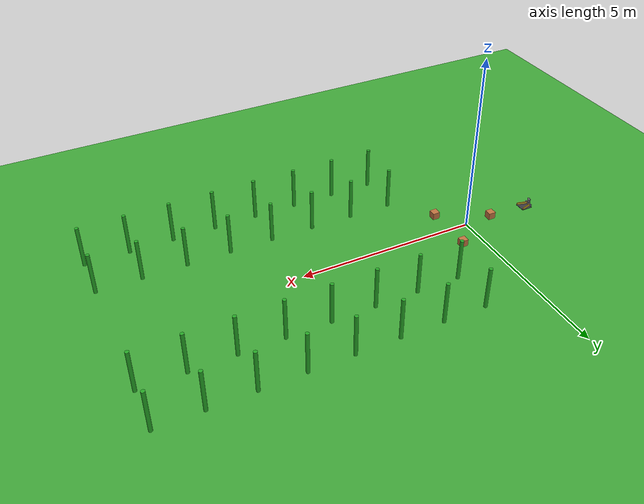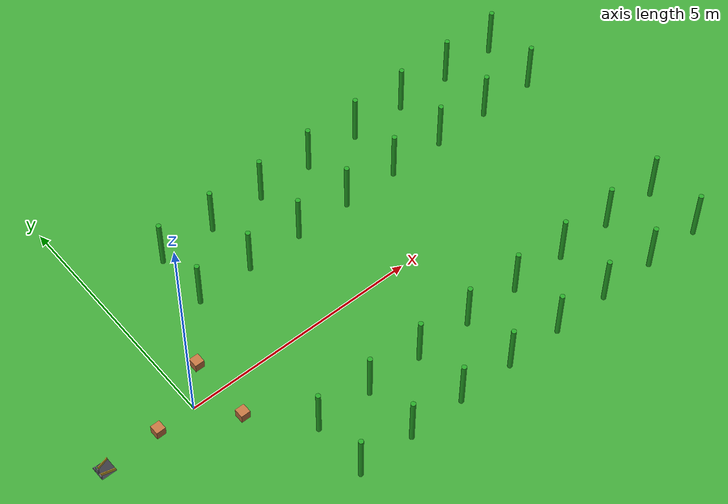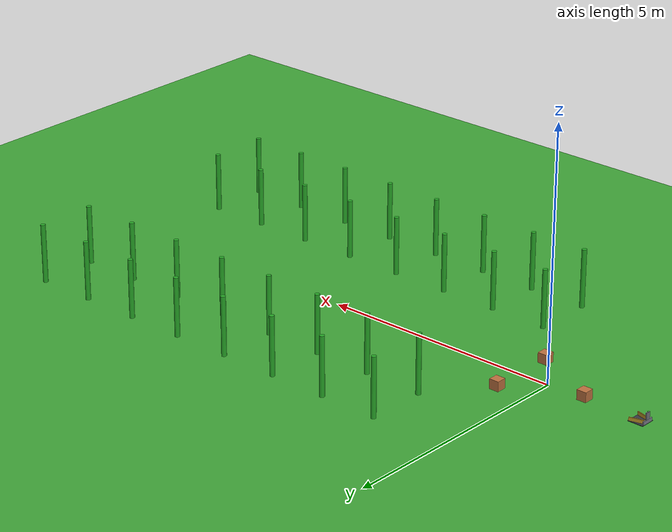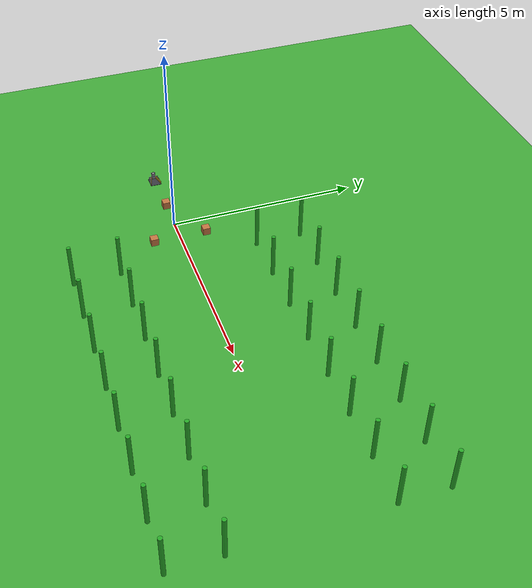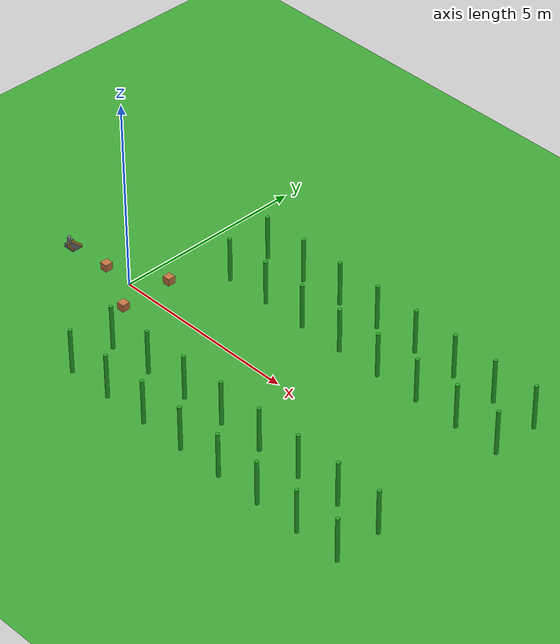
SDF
<?xml version="1.0" ?>
<sdf version="1.8">
  <world name="rover_world">

    <physics name="dart" type="dart" default="true">
      <max_step_size>0.002</max_step_size>
      <real_time_factor>1.0</real_time_factor>
    </physics>

    <plugin filename="ignition-gazebo-physics-system"        name="ignition::gazebo::systems::Physics"/>
    <plugin filename="ignition-gazebo-user-commands-system"  name="ignition::gazebo::systems::UserCommands"/>
    <plugin filename="ignition-gazebo-scene-broadcaster-system" name="ignition::gazebo::systems::SceneBroadcaster"/>
    <!-- Sensors plugin lives at WORLD level (not model level) so 3–10 rovers
         share one rendering pipeline instead of instantiating N competing ones. -->
    <plugin filename="ignition-gazebo-sensors-system" name="ignition::gazebo::systems::Sensors">
      <render_engine>ogre</render_engine>
    </plugin>

    <light name="sun" type="directional">
      <pose>0 0 10 0 0 0</pose>
      <cast_shadows>true</cast_shadows>
      <diffuse>1 1 1 1</diffuse>
      <specular>0.3 0.3 0.3 1</specular>
      <direction>-0.3 -0.4 -0.9</direction>
    </light>

    <scene>
      <ambient>0.5 0.5 0.5 1</ambient>
      <background>0.6 0.75 0.9 1</background>
      <grid>false</grid>
    </scene>

    <!-- GRASS GROUND -->
    <model name="ground">
      <static>true</static>
      <link name="ground_link">
        <collision name="ground_collision">
          <geometry><plane><normal>0 0 1</normal><size>30 30</size></plane></geometry>
          <surface><friction><ode><mu>1.0</mu><mu2>1.0</mu2></ode></friction></surface>
        </collision>
        <visual name="ground_visual">
          <geometry><plane><normal>0 0 1</normal><size>30 30</size></plane></geometry>
          <material>
            <ambient>0.20 0.55 0.18 1</ambient>
            <diffuse>0.25 0.65 0.22 1</diffuse>
            <specular>0.05 0.1 0.05 1</specular>
          </material>
        </visual>
      </link>
    </model>

    <!-- Small boxes near spawn so the 2 m sonars register something -->
    <model name="box_near_left">
      <static>true</static>
      <pose>0.6 0.7 0.1 0 0 0</pose>
      <link name="l">
        <collision name="c"><geometry><box><size>0.2 0.2 0.2</size></box></geometry></collision>
        <visual name="v">
          <geometry><box><size>0.2 0.2 0.2</size></box></geometry>
          <material><ambient>0.7 0.4 0.2 1</ambient><diffuse>0.75 0.45 0.25 1</diffuse></material>
        </visual>
      </link>
    </model>
    <model name="box_near_right">
      <static>true</static>
      <pose>0.6 -0.7 0.1 0 0 0</pose>
      <link name="l">
        <collision name="c"><geometry><box><size>0.2 0.2 0.2</size></box></geometry></collision>
        <visual name="v">
          <geometry><box><size>0.2 0.2 0.2</size></box></geometry>
          <material><ambient>0.7 0.4 0.2 1</ambient><diffuse>0.75 0.45 0.25 1</diffuse></material>
        </visual>
      </link>
    </model>
    <model name="box_behind">
      <static>true</static>
      <pose>-0.8 0.0 0.1 0 0 0</pose>
      <link name="l">
        <collision name="c"><geometry><box><size>0.2 0.2 0.2</size></box></geometry></collision>
        <visual name="v">
          <geometry><box><size>0.2 0.2 0.2</size></box></geometry>
          <material><ambient>0.7 0.4 0.2 1</ambient><diffuse>0.75 0.45 0.25 1</diffuse></material>
        </visual>
      </link>
    </model>

    <!-- Row Y=-3.0 -->
    <model name="crop_r1_p1"><static>true</static><pose>1.5 -3.0 0.6 0 0 0</pose><link name="l"><collision name="c"><geometry><cylinder><radius>0.05</radius><length>1.2</length></cylinder></geometry></collision><visual name="v"><geometry><cylinder><radius>0.05</radius><length>1.2</length></cylinder></geometry><material><ambient>0.1 0.55 0.1 1</ambient><diffuse>0.15 0.65 0.15 1</diffuse></material></visual></link></model>
    <model name="crop_r1_p2"><static>true</static><pose>2.7 -3.0 0.6 0 0 0</pose><link name="l"><collision name="c"><geometry><cylinder><radius>0.05</radius><length>1.2</length></cylinder></geometry></collision><visual name="v"><geometry><cylinder><radius>0.05</radius><length>1.2</length></cylinder></geometry><material><ambient>0.1 0.55 0.1 1</ambient><diffuse>0.15 0.65 0.15 1</diffuse></material></visual></link></model>
    <model name="crop_r1_p3"><static>true</static><pose>3.9 -3.0 0.6 0 0 0</pose><link name="l"><collision name="c"><geometry><cylinder><radius>0.05</radius><length>1.2</length></cylinder></geometry></collision><visual name="v"><geometry><cylinder><radius>0.05</radius><length>1.2</length></cylinder></geometry><material><ambient>0.1 0.55 0.1 1</ambient><diffuse>0.15 0.65 0.15 1</diffuse></material></visual></link></model>
    <model name="crop_r1_p4"><static>true</static><pose>5.1 -3.0 0.6 0 0 0</pose><link name="l"><collision name="c"><geometry><cylinder><radius>0.05</radius><length>1.2</length></cylinder></geometry></collision><visual name="v"><geometry><cylinder><radius>0.05</radius><length>1.2</length></cylinder></geometry><material><ambient>0.1 0.55 0.1 1</ambient><diffuse>0.15 0.65 0.15 1</diffuse></material></visual></link></model>
    <model name="crop_r1_p5"><static>true</static><pose>6.3 -3.0 0.6 0 0 0</pose><link name="l"><collision name="c"><geometry><cylinder><radius>0.05</radius><length>1.2</length></cylinder></geometry></collision><visual name="v"><geometry><cylinder><radius>0.05</radius><length>1.2</length></cylinder></geometry><material><ambient>0.1 0.55 0.1 1</ambient><diffuse>0.15 0.65 0.15 1</diffuse></material></visual></link></model>
    <model name="crop_r1_p6"><static>true</static><pose>7.5 -3.0 0.6 0 0 0</pose><link name="l"><collision name="c"><geometry><cylinder><radius>0.05</radius><length>1.2</length></cylinder></geometry></collision><visual name="v"><geometry><cylinder><radius>0.05</radius><length>1.2</length></cylinder></geometry><material><ambient>0.1 0.55 0.1 1</ambient><diffuse>0.15 0.65 0.15 1</diffuse></material></visual></link></model>
    <model name="crop_r1_p7"><static>true</static><pose>8.7 -3.0 0.6 0 0 0</pose><link name="l"><collision name="c"><geometry><cylinder><radius>0.05</radius><length>1.2</length></cylinder></geometry></collision><visual name="v"><geometry><cylinder><radius>0.05</radius><length>1.2</length></cylinder></geometry><material><ambient>0.1 0.55 0.1 1</ambient><diffuse>0.15 0.65 0.15 1</diffuse></material></visual></link></model>
    <model name="crop_r1_p8"><static>true</static><pose>9.9 -3.0 0.6 0 0 0</pose><link name="l"><collision name="c"><geometry><cylinder><radius>0.05</radius><length>1.2</length></cylinder></geometry></collision><visual name="v"><geometry><cylinder><radius>0.05</radius><length>1.2</length></cylinder></geometry><material><ambient>0.1 0.55 0.1 1</ambient><diffuse>0.15 0.65 0.15 1</diffuse></material></visual></link></model>

    <!-- Row Y=-1.8 -->
    <model name="crop_r2_p1"><static>true</static><pose>1.5 -1.8 0.6 0 0 0</pose><link name="l"><collision name="c"><geometry><cylinder><radius>0.05</radius><length>1.2</length></cylinder></geometry></collision><visual name="v"><geometry><cylinder><radius>0.05</radius><length>1.2</length></cylinder></geometry><material><ambient>0.1 0.55 0.1 1</ambient><diffuse>0.15 0.65 0.15 1</diffuse></material></visual></link></model>
    <model name="crop_r2_p2"><static>true</static><pose>2.7 -1.8 0.6 0 0 0</pose><link name="l"><collision name="c"><geometry><cylinder><radius>0.05</radius><length>1.2</length></cylinder></geometry></collision><visual name="v"><geometry><cylinder><radius>0.05</radius><length>1.2</length></cylinder></geometry><material><ambient>0.1 0.55 0.1 1</ambient><diffuse>0.15 0.65 0.15 1</diffuse></material></visual></link></model>
    <model name="crop_r2_p3"><static>true</static><pose>3.9 -1.8 0.6 0 0 0</pose><link name="l"><collision name="c"><geometry><cylinder><radius>0.05</radius><length>1.2</length></cylinder></geometry></collision><visual name="v"><geometry><cylinder><radius>0.05</radius><length>1.2</length></cylinder></geometry><material><ambient>0.1 0.55 0.1 1</ambient><diffuse>0.15 0.65 0.15 1</diffuse></material></visual></link></model>
    <model name="crop_r2_p4"><static>true</static><pose>5.1 -1.8 0.6 0 0 0</pose><link name="l"><collision name="c"><geometry><cylinder><radius>0.05</radius><length>1.2</length></cylinder></geometry></collision><visual name="v"><geometry><cylinder><radius>0.05</radius><length>1.2</length></cylinder></geometry><material><ambient>0.1 0.55 0.1 1</ambient><diffuse>0.15 0.65 0.15 1</diffuse></material></visual></link></model>
    <model name="crop_r2_p5"><static>true</static><pose>6.3 -1.8 0.6 0 0 0</pose><link name="l"><collision name="c"><geometry><cylinder><radius>0.05</radius><length>1.2</length></cylinder></geometry></collision><visual name="v"><geometry><cylinder><radius>0.05</radius><length>1.2</length></cylinder></geometry><material><ambient>0.1 0.55 0.1 1</ambient><diffuse>0.15 0.65 0.15 1</diffuse></material></visual></link></model>
    <model name="crop_r2_p6"><static>true</static><pose>7.5 -1.8 0.6 0 0 0</pose><link name="l"><collision name="c"><geometry><cylinder><radius>0.05</radius><length>1.2</length></cylinder></geometry></collision><visual name="v"><geometry><cylinder><radius>0.05</radius><length>1.2</length></cylinder></geometry><material><ambient>0.1 0.55 0.1 1</ambient><diffuse>0.15 0.65 0.15 1</diffuse></material></visual></link></model>
    <model name="crop_r2_p7"><static>true</static><pose>8.7 -1.8 0.6 0 0 0</pose><link name="l"><collision name="c"><geometry><cylinder><radius>0.05</radius><length>1.2</length></cylinder></geometry></collision><visual name="v"><geometry><cylinder><radius>0.05</radius><length>1.2</length></cylinder></geometry><material><ambient>0.1 0.55 0.1 1</ambient><diffuse>0.15 0.65 0.15 1</diffuse></material></visual></link></model>
    <model name="crop_r2_p8"><static>true</static><pose>9.9 -1.8 0.6 0 0 0</pose><link name="l"><collision name="c"><geometry><cylinder><radius>0.05</radius><length>1.2</length></cylinder></geometry></collision><visual name="v"><geometry><cylinder><radius>0.05</radius><length>1.2</length></cylinder></geometry><material><ambient>0.1 0.55 0.1 1</ambient><diffuse>0.15 0.65 0.15 1</diffuse></material></visual></link></model>

    <!-- Row Y=1.8 -->
    <model name="crop_r3_p1"><static>true</static><pose>1.5 1.8 0.6 0 0 0</pose><link name="l"><collision name="c"><geometry><cylinder><radius>0.05</radius><length>1.2</length></cylinder></geometry></collision><visual name="v"><geometry><cylinder><radius>0.05</radius><length>1.2</length></cylinder></geometry><material><ambient>0.1 0.55 0.1 1</ambient><diffuse>0.15 0.65 0.15 1</diffuse></material></visual></link></model>
    <model name="crop_r3_p2"><static>true</static><pose>2.7 1.8 0.6 0 0 0</pose><link name="l"><collision name="c"><geometry><cylinder><radius>0.05</radius><length>1.2</length></cylinder></geometry></collision><visual name="v"><geometry><cylinder><radius>0.05</radius><length>1.2</length></cylinder></geometry><material><ambient>0.1 0.55 0.1 1</ambient><diffuse>0.15 0.65 0.15 1</diffuse></material></visual></link></model>
    <model name="crop_r3_p3"><static>true</static><pose>3.9 1.8 0.6 0 0 0</pose><link name="l"><collision name="c"><geometry><cylinder><radius>0.05</radius><length>1.2</length></cylinder></geometry></collision><visual name="v"><geometry><cylinder><radius>0.05</radius><length>1.2</length></cylinder></geometry><material><ambient>0.1 0.55 0.1 1</ambient><diffuse>0.15 0.65 0.15 1</diffuse></material></visual></link></model>
    <model name="crop_r3_p4"><static>true</static><pose>5.1 1.8 0.6 0 0 0</pose><link name="l"><collision name="c"><geometry><cylinder><radius>0.05</radius><length>1.2</length></cylinder></geometry></collision><visual name="v"><geometry><cylinder><radius>0.05</radius><length>1.2</length></cylinder></geometry><material><ambient>0.1 0.55 0.1 1</ambient><diffuse>0.15 0.65 0.15 1</diffuse></material></visual></link></model>
    <model name="crop_r3_p5"><static>true</static><pose>6.3 1.8 0.6 0 0 0</pose><link name="l"><collision name="c"><geometry><cylinder><radius>0.05</radius><length>1.2</length></cylinder></geometry></collision><visual name="v"><geometry><cylinder><radius>0.05</radius><length>1.2</length></cylinder></geometry><material><ambient>0.1 0.55 0.1 1</ambient><diffuse>0.15 0.65 0.15 1</diffuse></material></visual></link></model>
    <model name="crop_r3_p6"><static>true</static><pose>7.5 1.8 0.6 0 0 0</pose><link name="l"><collision name="c"><geometry><cylinder><radius>0.05</radius><length>1.2</length></cylinder></geometry></collision><visual name="v"><geometry><cylinder><radius>0.05</radius><length>1.2</length></cylinder></geometry><material><ambient>0.1 0.55 0.1 1</ambient><diffuse>0.15 0.65 0.15 1</diffuse></material></visual></link></model>
    <model name="crop_r3_p7"><static>true</static><pose>8.7 1.8 0.6 0 0 0</pose><link name="l"><collision name="c"><geometry><cylinder><radius>0.05</radius><length>1.2</length></cylinder></geometry></collision><visual name="v"><geometry><cylinder><radius>0.05</radius><length>1.2</length></cylinder></geometry><material><ambient>0.1 0.55 0.1 1</ambient><diffuse>0.15 0.65 0.15 1</diffuse></material></visual></link></model>
    <model name="crop_r3_p8"><static>true</static><pose>9.9 1.8 0.6 0 0 0</pose><link name="l"><collision name="c"><geometry><cylinder><radius>0.05</radius><length>1.2</length></cylinder></geometry></collision><visual name="v"><geometry><cylinder><radius>0.05</radius><length>1.2</length></cylinder></geometry><material><ambient>0.1 0.55 0.1 1</ambient><diffuse>0.15 0.65 0.15 1</diffuse></material></visual></link></model>

    <!-- Row Y=3.0 -->
    <model name="crop_r4_p1"><static>true</static><pose>1.5 3.0 0.6 0 0 0</pose><link name="l"><collision name="c"><geometry><cylinder><radius>0.05</radius><length>1.2</length></cylinder></geometry></collision><visual name="v"><geometry><cylinder><radius>0.05</radius><length>1.2</length></cylinder></geometry><material><ambient>0.1 0.55 0.1 1</ambient><diffuse>0.15 0.65 0.15 1</diffuse></material></visual></link></model>
    <model name="crop_r4_p2"><static>true</static><pose>2.7 3.0 0.6 0 0 0</pose><link name="l"><collision name="c"><geometry><cylinder><radius>0.05</radius><length>1.2</length></cylinder></geometry></collision><visual name="v"><geometry><cylinder><radius>0.05</radius><length>1.2</length></cylinder></geometry><material><ambient>0.1 0.55 0.1 1</ambient><diffuse>0.15 0.65 0.15 1</diffuse></material></visual></link></model>
    <model name="crop_r4_p3"><static>true</static><pose>3.9 3.0 0.6 0 0 0</pose><link name="l"><collision name="c"><geometry><cylinder><radius>0.05</radius><length>1.2</length></cylinder></geometry></collision><visual name="v"><geometry><cylinder><radius>0.05</radius><length>1.2</length></cylinder></geometry><material><ambient>0.1 0.55 0.1 1</ambient><diffuse>0.15 0.65 0.15 1</diffuse></material></visual></link></model>
    <model name="crop_r4_p4"><static>true</static><pose>5.1 3.0 0.6 0 0 0</pose><link name="l"><collision name="c"><geometry><cylinder><radius>0.05</radius><length>1.2</length></cylinder></geometry></collision><visual name="v"><geometry><cylinder><radius>0.05</radius><length>1.2</length></cylinder></geometry><material><ambient>0.1 0.55 0.1 1</ambient><diffuse>0.15 0.65 0.15 1</diffuse></material></visual></link></model>
    <model name="crop_r4_p5"><static>true</static><pose>6.3 3.0 0.6 0 0 0</pose><link name="l"><collision name="c"><geometry><cylinder><radius>0.05</radius><length>1.2</length></cylinder></geometry></collision><visual name="v"><geometry><cylinder><radius>0.05</radius><length>1.2</length></cylinder></geometry><material><ambient>0.1 0.55 0.1 1</ambient><diffuse>0.15 0.65 0.15 1</diffuse></material></visual></link></model>
    <model name="crop_r4_p6"><static>true</static><pose>7.5 3.0 0.6 0 0 0</pose><link name="l"><collision name="c"><geometry><cylinder><radius>0.05</radius><length>1.2</length></cylinder></geometry></collision><visual name="v"><geometry><cylinder><radius>0.05</radius><length>1.2</length></cylinder></geometry><material><ambient>0.1 0.55 0.1 1</ambient><diffuse>0.15 0.65 0.15 1</diffuse></material></visual></link></model>
    <model name="crop_r4_p7"><static>true</static><pose>8.7 3.0 0.6 0 0 0</pose><link name="l"><collision name="c"><geometry><cylinder><radius>0.05</radius><length>1.2</length></cylinder></geometry></collision><visual name="v"><geometry><cylinder><radius>0.05</radius><length>1.2</length></cylinder></geometry><material><ambient>0.1 0.55 0.1 1</ambient><diffuse>0.15 0.65 0.15 1</diffuse></material></visual></link></model>
    <model name="crop_r4_p8"><static>true</static><pose>9.9 3.0 0.6 0 0 0</pose><link name="l"><collision name="c"><geometry><cylinder><radius>0.05</radius><length>1.2</length></cylinder></geometry></collision><visual name="v"><geometry><cylinder><radius>0.05</radius><length>1.2</length></cylinder></geometry><material><ambient>0.1 0.55 0.1 1</ambient><diffuse>0.15 0.65 0.15 1</diffuse></material></visual></link></model>

    <model name="charging_station_0">
      <static>true</static>
      <pose>-2.0 0 0 0 0 0</pose>
      <link name="base">
        <!-- Ground pad (dark gray slab so the station reads as a docking bay) -->
        <visual name="pad_v"><pose>0 0 0.005 0 0 0</pose><geometry><box><size>0.32 0.30 0.01</size></box></geometry><material><ambient>0.15 0.15 0.17 1</ambient><diffuse>0.22 0.22 0.25 1</diffuse></material></visual>
        <collision name="pad_c"><pose>0 0 0.005 0 0 0</pose><geometry><box><size>0.32 0.30 0.01</size></box></geometry></collision>

        <!-- Back plate: 25 cm wide, 8 cm tall, 2 cm thick, at back (x=-0.15) -->
        <visual name="back_v"><pose>-0.15 0 0.04 0 0 0</pose><geometry><box><size>0.02 0.25 0.08</size></box></geometry><material><ambient>0.35 0.35 0.38 1</ambient><diffuse>0.5 0.5 0.55 1</diffuse></material></visual>
        <collision name="back_c"><pose>-0.15 0 0.04 0 0 0</pose><geometry><box><size>0.02 0.25 0.08</size></box></geometry></collision>

        <!-- Left funnel wall: opens from throat (y=+0.06 at x=-0.15) to mouth (y=+0.14 at x=+0.15).
             Midpoint (0, 0.10, 0.04), length 0.31 m, yaw = atan2(0.08, 0.30) ≈ 0.2606 rad ≈ 14.9°. -->
        <visual name="wall_L_v"><pose>0 0.10 0.04 0 0 0.2606</pose><geometry><box><size>0.31 0.015 0.08</size></box></geometry><material><ambient>0.55 0.45 0.10 1</ambient><diffuse>0.75 0.60 0.15 1</diffuse></material></visual>
        <collision name="wall_L_c"><pose>0 0.10 0.04 0 0 0.2606</pose><geometry><box><size>0.31 0.015 0.08</size></box></geometry></collision>

        <!-- Right funnel wall: mirror of the left. -->
        <visual name="wall_R_v"><pose>0 -0.10 0.04 0 0 -0.2606</pose><geometry><box><size>0.31 0.015 0.08</size></box></geometry><material><ambient>0.55 0.45 0.10 1</ambient><diffuse>0.75 0.60 0.15 1</diffuse></material></visual>
        <collision name="wall_R_c"><pose>0 -0.10 0.04 0 0 -0.2606</pose><geometry><box><size>0.31 0.015 0.08</size></box></geometry></collision>

        <!-- Two pogo-pin contacts on back plate at wheel-clearance height (0.03 m). Cylinders oriented along X.
             Copper color so they read as electrical contacts. -->
        <visual name="pin_L_v"><pose>-0.135 0.03 0.03 0 1.5708 0</pose><geometry><cylinder><radius>0.008</radius><length>0.02</length></cylinder></geometry><material><ambient>0.55 0.30 0.10 1</ambient><diffuse>0.80 0.45 0.15 1</diffuse></material></visual>
        <collision name="pin_L_c"><pose>-0.135 0.03 0.03 0 1.5708 0</pose><geometry><cylinder><radius>0.008</radius><length>0.02</length></cylinder></geometry></collision>
        <visual name="pin_R_v"><pose>-0.135 -0.03 0.03 0 1.5708 0</pose><geometry><cylinder><radius>0.008</radius><length>0.02</length></cylinder></geometry><material><ambient>0.55 0.30 0.10 1</ambient><diffuse>0.80 0.45 0.15 1</diffuse></material></visual>
        <collision name="pin_R_c"><pose>-0.135 -0.03 0.03 0 1.5708 0</pose><geometry><cylinder><radius>0.008</radius><length>0.02</length></cylinder></geometry></collision>

        <!-- AprilTag mast: rises 15 cm above back plate; front-facing plate for the tag texture.
             White plate now — swap material for a real AprilTag PNG when the visual servo node comes online. -->
        <visual name="mast_v"><pose>-0.15 0 0.15 0 0 0</pose><geometry><box><size>0.02 0.10 0.14</size></box></geometry><material><ambient>0.30 0.30 0.32 1</ambient><diffuse>0.45 0.45 0.48 1</diffuse></material></visual>
        <collision name="mast_c"><pose>-0.15 0 0.15 0 0 0</pose><geometry><box><size>0.02 0.10 0.14</size></box></geometry></collision>
        <visual name="tag_v"><pose>-0.139 0 0.20 0 0 0</pose><geometry><box><size>0.002 0.06 0.06</size></box></geometry><material><ambient>0.95 0.95 0.95 1</ambient><diffuse>1 1 1 1</diffuse><emissive>0.4 0.4 0.4 1</emissive></material></visual>

        <!-- Status LED beacon (small green cylinder atop mast — visible cue that dock is "live") -->
        <visual name="led_v"><pose>-0.15 0 0.235 0 0 0</pose><geometry><cylinder><radius>0.012</radius><length>0.015</length></cylinder></geometry><material><ambient>0.1 0.6 0.1 1</ambient><diffuse>0.2 0.9 0.2 1</diffuse><emissive>0.1 0.5 0.1 1</emissive></material></visual>
      </link>
    </model>

  </world>
</sdf>
